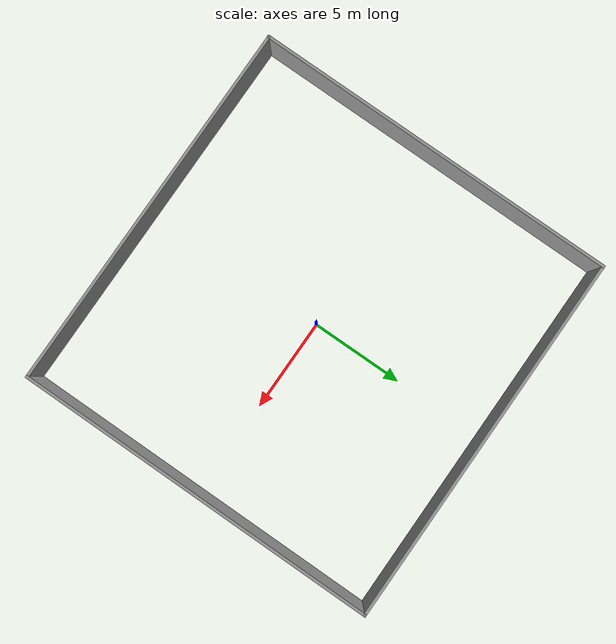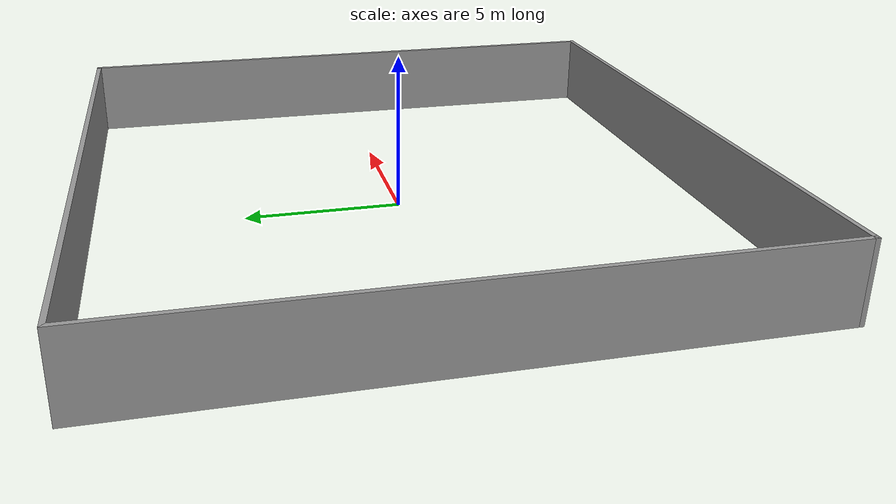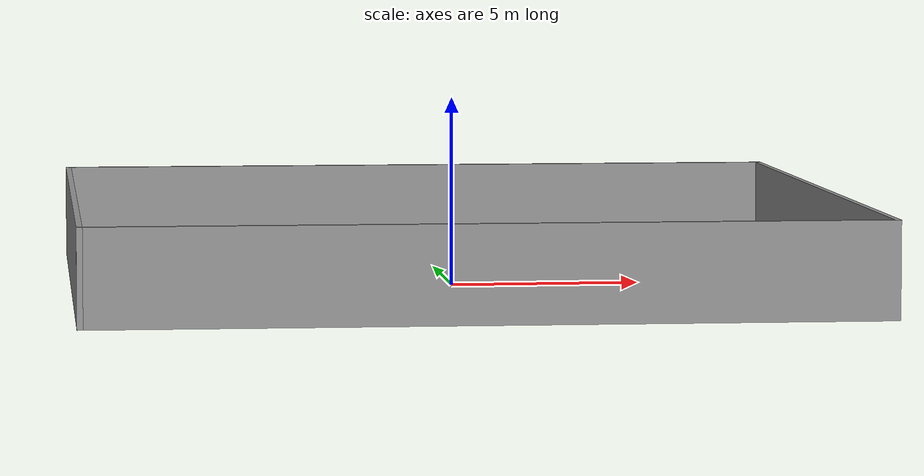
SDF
<?xml version='1.0'?>
<sdf version='1.6'>
  <model name='squareroom'>
    <pose frame=''>-0.018458 -0.033725 0 0 -0 0</pose>
    <link name='Wall_0'>
      <collision name='Wall_0_Collision'>
        <geometry>
          <box>
            <size>19.75 0.15 2.5</size>
          </box>
        </geometry>
        <pose frame=''>0 0 1.25 0 -0 0</pose>
      </collision>
      <visual name='Wall_0_Visual'>
        <pose frame=''>0 0 1.25 0 -0 0</pose>
        <geometry>
          <box>
            <size>19.75 0.15 2.5</size>
          </box>
        </geometry>
        <material>
          <script>
            <uri>file://media/materials/scripts/gazebo.material</uri>
            <name>Gazebo/Grey</name>
          </script>
          <ambient>1 1 1 1</ambient>
        </material>
        <meta>
          <layer>0</layer>
        </meta>
      </visual>
      <pose frame=''>-10.05 -0 0 0 -0 1.5708</pose>
    </link>
    <link name='Wall_2'>
      <collision name='Wall_2_Collision'>
        <geometry>
          <box>
            <size>20.25 0.15 2.5</size>
          </box>
        </geometry>
        <pose frame=''>0 0 1.25 0 -0 0</pose>
      </collision>
      <visual name='Wall_2_Visual'>
        <pose frame=''>0 0 1.25 0 -0 0</pose>
        <geometry>
          <box>
            <size>20.25 0.15 2.5</size>
          </box>
        </geometry>
        <material>
          <script>
            <uri>file://media/materials/scripts/gazebo.material</uri>
            <name>Gazebo/Grey</name>
          </script>
          <ambient>1 1 1 1</ambient>
        </material>
        <meta>
          <layer>0</layer>
        </meta>
      </visual>
      <pose frame=''>0 9.8 0 0 -0 0</pose>
    </link>
    <link name='Wall_3'>
      <collision name='Wall_3_Collision'>
        <geometry>
          <box>
            <size>0.15 0.15 2.5</size>
          </box>
        </geometry>
        <pose frame=''>0 0 1.25 0 -0 0</pose>
      </collision>
      <visual name='Wall_3_Visual'>
        <pose frame=''>0 0 1.25 0 -0 0</pose>
        <geometry>
          <box>
            <size>0.15 0.15 2.5</size>
          </box>
        </geometry>
        <material>
          <script>
            <uri>file://media/materials/scripts/gazebo.material</uri>
            <name>Gazebo/Grey</name>
          </script>
          <ambient>1 1 1 1</ambient>
        </material>
        <meta>
          <layer>0</layer>
        </meta>
      </visual>
      <pose frame=''>10.05 9.8 0 0 -0 0</pose>
    </link>
    <link name='Wall_4'>
      <collision name='Wall_4_Collision'>
        <geometry>
          <box>
            <size>19.75 0.15 2.5</size>
          </box>
        </geometry>
        <pose frame=''>0 0 1.25 0 -0 0</pose>
      </collision>
      <visual name='Wall_4_Visual'>
        <pose frame=''>0 0 1.25 0 -0 0</pose>
        <geometry>
          <box>
            <size>19.75 0.15 2.5</size>
          </box>
        </geometry>
        <material>
          <script>
            <uri>file://media/materials/scripts/gazebo.material</uri>
            <name>Gazebo/Grey</name>
          </script>
          <ambient>1 1 1 1</ambient>
        </material>
        <meta>
          <layer>0</layer>
        </meta>
      </visual>
      <pose frame=''>10.05 -0 0 0 -0 -1.5708</pose>
    </link>
    <link name='Wall_5'>
      <collision name='Wall_5_Collision'>
        <geometry>
          <box>
            <size>20.25 0.15 2.5</size>
          </box>
        </geometry>
        <pose frame=''>0 0 1.25 0 -0 0</pose>
      </collision>
      <visual name='Wall_5_Visual'>
        <pose frame=''>0 0 1.25 0 -0 0</pose>
        <geometry>
          <box>
            <size>20.25 0.15 2.5</size>
          </box>
        </geometry>
        <material>
          <script>
            <uri>file://media/materials/scripts/gazebo.material</uri>
            <name>Gazebo/Grey</name>
          </script>
          <ambient>1 1 1 1</ambient>
        </material>
        <meta>
          <layer>0</layer>
        </meta>
      </visual>
      <pose frame=''>0 -9.8 0 0 -0 3.14159</pose>
    </link>
    <static>1</static>
  </model>
</sdf>
